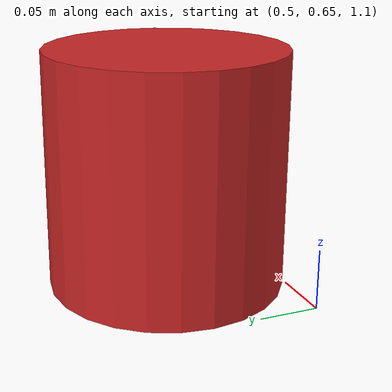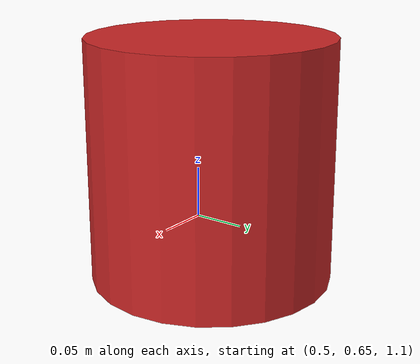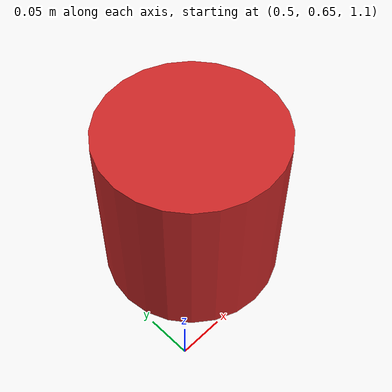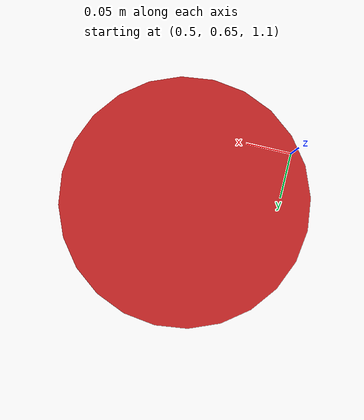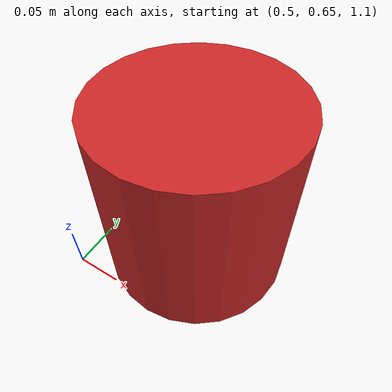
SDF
<?xml version="1.0" ?>
<sdf version='1.6'>

  <model name='cylinder1'>
    <pose frame=''>0.6 0.74 1.2 0 -0 0</pose>
    <allow_auto_disable>0</allow_auto_disable>
    <link name='link'>
      <velocity_decay>
        <linear>0.0005</linear>
        <angular>0.0002</angular>
      </velocity_decay>
      <inertial>
        <mass>0.01</mass>
        <inertia>
          <ixx>4.525E-05</ixx>
          <ixy>0</ixy>
          <ixz>0</ixz>
          <iyy>4.525E-05</iyy>
          <iyz>0</iyz>
          <izz>9.05E-05</izz>

        </inertia>
        <pose frame=''>0 0 0 0 -0 0</pose>
      </inertial>
      <collision name='collision'>
        <geometry>
          <cylinder>
            <radius>0.1</radius>
            <length>0.2</length>
          </cylinder>
        </geometry>
        <max_contacts>1000</max_contacts>
        <surface>
          <contact>
	          <ode>
              <min_depth>0.001</min_depth>
              <max_vel>1</max_vel>

            </ode>
          </contact>

          <friction>
            <ode>
              <mu>6</mu>
              <mu2>6</mu2>
	            <slip1>0</slip1>
              <slip2>0</slip2>
            </ode>
            <torsional>
              <coefficient>1</coefficient>

              <ode>
                <slip>0</slip>
              </ode>
            </torsional>
         </friction>
        </surface>
      </collision>
      <visual name='visual'>
        <geometry>
          <cylinder>
            <radius>0.1</radius>
            <length>0.2</length>
          </cylinder>
        </geometry>
        <material>
          <script>
            <name>Gazebo/Red</name>
            <uri>file://media/materials/scripts/gazebo.material</uri>
          </script>
        </material>
      </visual>
      <self_collide>1</self_collide>
      <enable_wind>0</enable_wind>
      <kinematic>0</kinematic>
    </link>

  </model>
</sdf>
